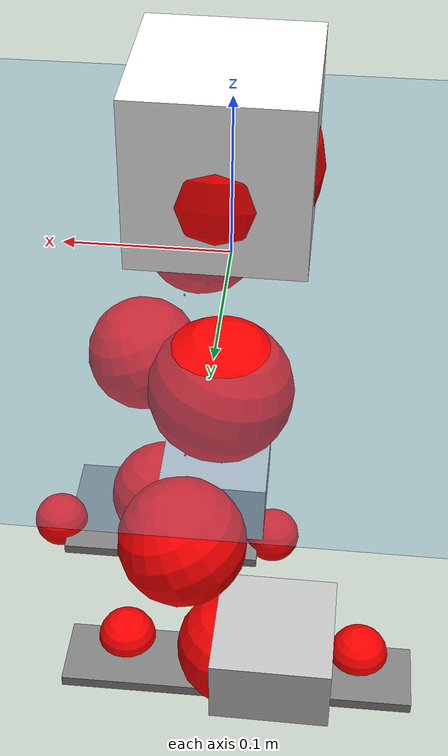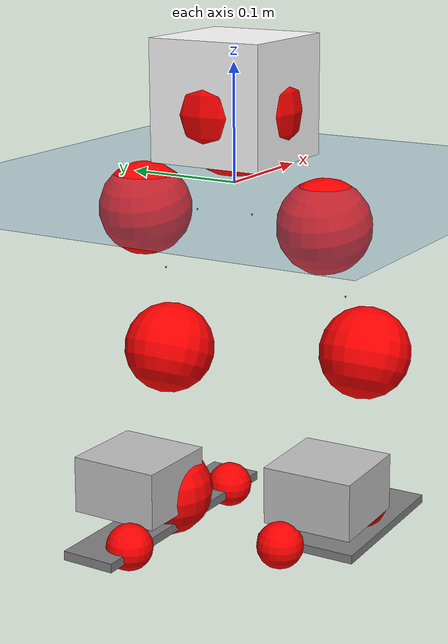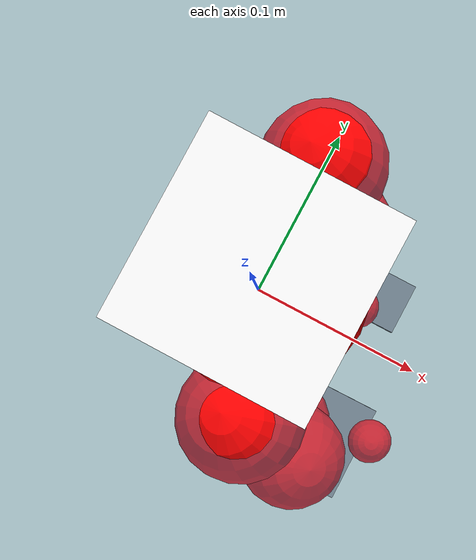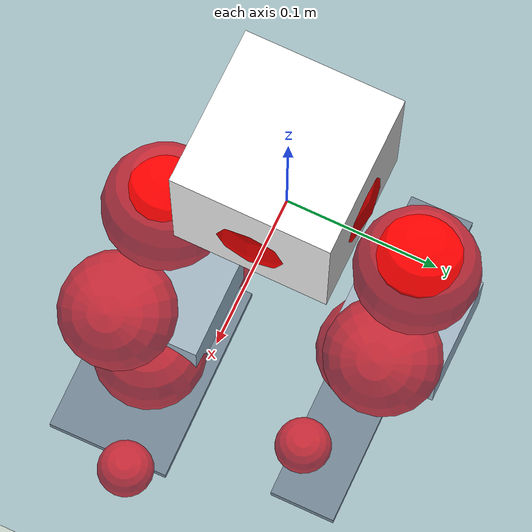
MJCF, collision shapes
<mujoco model="pi_12dof_release_v1">
  <compiler angle="radian" assetdir="assets" balanceinertia="true" inertiafromgeom="false"/>

  <option timestep="0.005" density="1.2" viscosity="2e-05"/>

  <size nkey="1"/>

  <visual>
    <quality shadowsize="8192"/>
    <map shadowclip="0.5"/>
  </visual>

  <default>
    <default class="/">
      <joint armature="0.01" damping="0.01" frictionloss="0.01"/>
      <geom contype="0" conaffinity="0" group="1" solref="-1000 -80"/>
      <site size="0.01 0.005 0.005" group="5"/>
      <general forcelimited="true" biastype="affine" gainprm="20" biasprm="0 -20 -0.5"/>
      <default class="foot">
        <geom size="0.0845 0.036 0.005" type="box" condim="6" group="4" priority="1" friction="0.9 0.2 0.2" solimp="0.015 1 0.005"/>
      </default>
      <default class="reward_collision_sphere">
        <geom group="5" rgba="1 0 0 1"/>
      </default>
    </default>
  </default>

  <asset>
    <texture type="skybox" colorspace="auto" name="//unnamed_texture_0" builtin="gradient" rgb1="0.95 0.95 0.95" rgb2="0.95 0.95 0.95" width="100" height="600"/>
    <texture type="2d" colorspace="auto" name="texplane" builtin="checker" rgb1="0.345 0.575 0.748" rgb2="0.345 0.575 0.748" markrgb="1 1 1" width="512" height="512"/>
    <material name="MatPlane" class="/" texture="texplane" texuniform="true" texrepeat="2 2" specular="0.9"/>
    <mesh name="baselink_1" class="/" file="baselink_1.STL"/>
    <mesh name="r_hip_pitch_link" class="/" file="r_hip_pitch_link.STL"/>
    <mesh name="r_hip_roll_link" class="/" file="r_hip_roll_link.STL"/>
    <mesh name="r_thigh_link" class="/" file="r_thigh_link.STL"/>
    <mesh name="r_calf_link" class="/" file="r_calf_link.STL"/>
    <mesh name="r_ankle_pitch_link" class="/" file="r_ankle_pitch_link.STL"/>
    <mesh name="r_ankle_roll_link" class="/" file="r_ankle_roll_link.STL"/>
    <mesh name="l_hip_pitch_link" class="/" file="l_hip_pitch_link.STL"/>
    <mesh name="l_hip_roll_link" class="/" file="l_hip_roll_link.STL"/>
    <mesh name="l_thigh_link" class="/" file="l_thigh_link.STL"/>
    <mesh name="l_calf_link" class="/" file="l_calf_link.STL"/>
    <mesh name="l_ankle_pitch_link" class="/" file="l_ankle_pitch_link.STL"/>
    <mesh name="l_ankle_roll_link" class="/" file="l_ankle_roll_link.STL"/>
  </asset>

  <worldbody>
    <geom name="floor" class="/" size="100 100 0.125" type="plane" group="0" material="MatPlane"/>
    <light name="toplight_shadow" class="/" pos="0 0 5" dir="0.0990148 0.0990148 -0.990148" type="directional" ambient="0.04 0.04 0.04" diffuse="0.55 0.55 0.55" specular="0.12 0.12 0.12"/>
    <light name="toplight_fill" class="/" pos="0 0 5" dir="0.0990148 0.0990148 -0.990148" type="directional" castshadow="false" ambient="0.04 0.04 0.04" diffuse="0.3 0.3 0.3" specular="0.08 0.08 0.08"/>
    <body name="trunk" pos="0.00435292 0.00107836 -0.00565736" quat="0.999994 0.000169322 -0.00209968 -0.00274843">
      <inertial pos="0.0184759 0.0123157 0.0450458" quat="0.704331 -0.00230734 0.0168269 0.709668" mass="1.84072" diaginertia="0.0264689 0.00460197 0.00304549"/>
      <joint name="//unnamed_joint_0" type="free"/>
      <geom name="//unnamed_geom_1" class="/" type="mesh" density="0" rgba="1 1 1 1" mesh="baselink_1"/>
      <geom name="//unnamed_geom_2" class="/" size="0.0508057 0.0508057 0.0508057" pos="0 0 0.0760119" type="box" rgba="1 1 1 1"/>
      <geom name="//unnamed_geom_3" class="reward_collision_sphere" size="0.0558862" pos="0 0 0.0665104"/>
      <site name="imu" class="/" pos="-0.0678098 -0.00288297 0.0675295" size="0.0101611"/>
      <camera name="track" class="/" pos="0 -1.75463 0" quat="0.707107 0.707107 0 0" mode="trackcom"/>
      <camera name="ego_camera" class="/" pos="0.0915656 0 0.171027" quat="-0.5 -0.5 0.5 0.5"/>
      <body name="r_hip_pitch_link" pos="0.0108181 -0.00896479 -0.0239806" quat="0.992077 -0.000494211 -0.125629 -0.000563491">
        <inertial pos="0.00248788 -0.037729 0.00125045" quat="-0.0172395 0.703226 -0.0310458 0.710079" mass="0.418646" diaginertia="0.000353326 6.95918e-05 7.78391e-05"/>
        <joint name="r_hip_pitch_joint" class="/" pos="0 0 0" axis="-0.000958597 -0.999498 0.031677" range="-1.7721 1.53284" armature="0.0164976" damping="0.0291736" frictionloss="0.0135134"/>
        <geom name="//unnamed_geom_4" class="/" type="mesh" density="0" rgba="0.75294 0.75294 0.75294 1" mesh="r_hip_pitch_link"/>
        <geom name="//unnamed_geom_5" class="/" size="0.000508057 0.000508057 0.000508057" type="box" rgba="0.75294 0.75294 0.75294 1"/>
        <body name="r_hip_roll_link" pos="0.00857442 -0.0641629 -0.00725601" quat="0.999979 -0.00147308 -0.00446567 0.00445761">
          <inertial pos="-0.00235528 -8.62557e-06 -0.0659295" quat="0.686629 -0.10368 -0.0414921 0.71838" mass="0.466817" diaginertia="0.00091105 0.00017442 9.48982e-05"/>
          <joint name="r_hip_roll_joint" class="/" pos="0 0 0" axis="-0.99866 -0.0447885 0.0259445" stiffness="0.00856201" range="-0.160454 0.478701" armature="0.0145476" damping="0.0701882" frictionloss="0.00305147"/>
          <geom name="//unnamed_geom_6" class="/" type="mesh" density="0" rgba="0.75294 0.75294 0.75294 1" mesh="r_hip_roll_link"/>
          <geom name="//unnamed_geom_7" class="/" size="0.000508057 0.000508057 0.000508057" type="box" rgba="0.75294 0.75294 0.75294 1"/>
          <geom name="//unnamed_geom_8" class="reward_collision_sphere" size="0.0406445"/>
          <body name="r_thigh_link" pos="-0.00213455 -0.0128567 -0.0638003" quat="0.999998 0.000219652 -0.00161248 -0.00109831">
            <inertial pos="0.00024973 -0.00245754 -0.0379115" quat="0.738033 0.674764 -0.000186025 -0.000390683" mass="0.124002" diaginertia="0.000403787 5.0027e-05 4.44757e-05"/>
            <joint name="r_thigh_joint" class="/" pos="0 0 0" axis="-0.0126681 0.00684166 -0.999896" range="-0.0976787 0.64874" armature="0.00247945" damping="0.0278966" frictionloss="0.00629906"/>
            <geom name="//unnamed_geom_9" class="/" type="mesh" density="0" rgba="0.75294 0.75294 0.75294 1" mesh="r_thigh_link"/>
            <geom name="//unnamed_geom_10" class="/" size="0.000508057 0.000508057 0.000508057" type="box" rgba="0.75294 0.75294 0.75294 1"/>
            <body name="r_calf_link" pos="0.0138846 -0.0042109 -0.0630479" quat="0.947542 -4.90879e-05 0.319631 -5.27097e-05">
              <inertial pos="0.00879198 0.0147535 -0.0568142" quat="0.996877 -0.0470339 0.0167345 0.061185" mass="0.835613" diaginertia="0.0105053 0.00145982 0.000147723"/>
              <joint name="r_calf_joint" class="/" pos="0 0 0" axis="0.0266704 -0.998809 0.0408541" range="-1.66473 0.51812" armature="0.0142858" damping="0.0284864" frictionloss="0.00951718"/>
              <geom name="//unnamed_geom_11" class="/" type="mesh" density="0" rgba="0.75294 0.75294 0.75294 1" mesh="r_calf_link"/>
              <geom name="//unnamed_geom_12" class="/" size="0.000508057 0.000508057 0.000508057" type="box" rgba="0.75294 0.75294 0.75294 1"/>
              <geom name="//unnamed_geom_13" class="reward_collision_sphere" size="0.0406445"/>
              <body name="r_ankle_pitch_link" pos="-0.00796507 0.00799527 -0.121172" quat="0.980099 0.00130746 -0.198423 0.00579005">
                <inertial pos="-0.00794531 0.00809899 0.00835242" quat="0.0366911 0.716933 -0.0234291 0.695782" mass="0.165369" diaginertia="0.000967743 0.000137687 8.01124e-05"/>
                <joint name="r_ankle_pitch_joint" class="/" pos="0 0 0" axis="-0.0162204 -0.998816 0.0458675" stiffness="0.050105" range="-1.55035 0.310498" armature="0.00587805" damping="0.0645435" frictionloss="0.0109907"/>
                <geom name="//unnamed_geom_14" class="/" type="mesh" density="0" rgba="0.75294 0.75294 0.75294 1" mesh="r_ankle_pitch_link"/>
                <geom name="//unnamed_geom_15" class="/" size="0.0396284 0.0406445 0.0254028" type="box" rgba="0.75294 0.75294 0.75294 1"/>
                <body name="r_ankle_roll_link" pos="0.100481 0.00398489 -0.00244031" quat="0.999991 0.00103805 0.00386419 0.00126032">
                  <inertial pos="-0.0182049 0.00055288 -0.0144352" quat="0.594252 0.464321 0.416744 0.507538" mass="0.41841" diaginertia="0.0024293 0.00050225 0.000191087"/>
                  <joint name="r_ankle_roll_joint" class="/" pos="0 0 0" axis="-0.999188 -0.00645495 -0.0397617" stiffness="0.00430385" range="-0.338308 0.160621" armature="0.00309514" damping="0.00371456" frictionloss="0.00790046"/>
                  <geom name="//unnamed_geom_16" class="/" type="mesh" density="0" rgba="0.75294 0.75294 0.75294 1" mesh="r_ankle_roll_link"/>
                  <geom name="//unnamed_geom_17" class="/" type="mesh" rgba="0.75294 0.75294 0.75294 1" mesh="r_ankle_roll_link"/>
                  <geom name="right_foot" class="foot" size="0.0735186 0.0451498 0.00377434" pos="-0.0622646 0 -0.0418065"/>
                  <geom name="//unnamed_geom_19" class="reward_collision_sphere" size="0.0406445" pos="-0.0610437 0 -0.019003"/>
                  <geom name="//unnamed_geom_20" class="reward_collision_sphere" size="0.0203223" pos="0.0183131 0.0175463 -0.038006"/>
                  <geom name="//unnamed_geom_21" class="reward_collision_sphere" size="0.0203223" pos="-0.146505 0.0175463 -0.038006"/>
                  <site name="right_foot" class="foot" pos="-0.0622646 0 -0.0418065" size="0.0101611"/>
                </body>
              </body>
            </body>
          </body>
        </body>
      </body>
      <body name="l_hip_pitch_link" pos="-0.0127114 0.0304114 -0.0191424" quat="0.9922 0.000116613 -0.124656 -0.000173629">
        <inertial pos="-0.000782543 0.0379079 0.0140509" quat="-0.005421 0.711554 0.0741255 0.69869" mass="0.334704" diaginertia="0.000230649 4.72256e-05 7.08533e-05"/>
        <joint name="l_hip_pitch_joint" class="/" pos="0 0 0" axis="-0.00222589 0.999997 0.000654699" stiffness="0.0474692" range="-1.30652 1.73106" armature="0.0100245" damping="0" frictionloss="0.0150386"/>
        <geom name="//unnamed_geom_22" class="/" type="mesh" density="0" rgba="0.75294 0.75294 0.75294 1" mesh="l_hip_pitch_link"/>
        <geom name="//unnamed_geom_23" class="/" size="0.000508057 0.000508057 0.000508057" type="box" rgba="0.75294 0.75294 0.75294 1"/>
        <body name="l_hip_roll_link" pos="0.00336046 0.0564232 -0.00690108" quat="0.999995 0.00113108 0.00230015 0.00157526">
          <inertial pos="0.0129768 -0.00527204 -0.0434906" quat="0.70116 -0.0739457 -0.0779228 0.704865" mass="0.495502" diaginertia="0.00120736 0.000142075 0.000103647"/>
          <joint name="l_hip_roll_joint" class="/" pos="0 0 0" axis="-0.999802 0.0118439 0.015988" stiffness="0.00228334" range="-0.613025 0.187016" armature="0.0123006" damping="0" frictionloss="0.0144078"/>
          <geom name="//unnamed_geom_24" class="/" type="mesh" density="0" rgba="0.75294 0.75294 0.75294 1" mesh="l_hip_roll_link"/>
          <geom name="//unnamed_geom_25" class="/" size="0.000508057 0.000508057 0.000508057" type="box" rgba="0.75294 0.75294 0.75294 1"/>
          <geom name="//unnamed_geom_26" class="reward_collision_sphere" size="0.0406445"/>
          <body name="l_thigh_link" pos="0.00644299 -0.00606357 -0.0605784" quat="1 0.000113716 -0.000516418 0.000547151">
            <inertial pos="-0.00770365 -0.013643 -0.0398766" quat="0.666575 0.744136 0.00345755 -0.0439115" mass="0.0938888" diaginertia="0.000305603 3.34618e-05 3.37828e-05"/>
            <joint name="l_thigh_joint" class="/" pos="0 0 0" axis="0.000952779 -0.00899403 -0.999959" stiffness="0.0606222" range="-0.322795 0.474687" armature="0.00763986" damping="0.00372891" frictionloss="0.0103614"/>
            <geom name="//unnamed_geom_27" class="/" type="mesh" density="0" rgba="0.75294 0.75294 0.75294 1" mesh="l_thigh_link"/>
            <geom name="//unnamed_geom_28" class="/" size="0.000508057 0.000508057 0.000508057" type="box" rgba="0.75294 0.75294 0.75294 1"/>
            <body name="l_calf_link" pos="-0.0155181 -0.000807064 -0.0732427" quat="0.947601 -0.000195493 0.319457 0.000367409">
              <inertial pos="0.00901253 -0.00466786 -0.0520797" quat="0.997126 0.0140144 0.0425697 -0.0610868" mass="0.866459" diaginertia="0.0115164 0.00217506 0.000158669"/>
              <joint name="l_calf_joint" class="/" pos="0 0 0" axis="0.055229 0.998395 -0.0125411" range="-0.660003 1.53619" armature="0.00979222" damping="0.0558833" frictionloss="0.00713981"/>
              <geom name="//unnamed_geom_29" class="/" type="mesh" density="0" rgba="0.75294 0.75294 0.75294 1" mesh="l_calf_link"/>
              <geom name="//unnamed_geom_30" class="/" size="0.000508057 0.000508057 0.000508057" type="box" rgba="0.75294 0.75294 0.75294 1"/>
              <geom name="//unnamed_geom_31" class="reward_collision_sphere" size="0.0406445"/>
              <body name="l_ankle_pitch_link" pos="-0.0144032 -0.0056581 -0.12022" quat="0.980835 0.00170372 -0.194788 -0.00410156">
                <inertial pos="0.00546799 -0.00928023 -0.00405425" quat="0.00287663 0.708367 0.00274105 0.705833" mass="0.232995" diaginertia="0.00105463 0.000130592 0.000106241"/>
                <joint name="l_ankle_pitch_joint" class="/" pos="0 0 0" axis="0.000112215 0.999997 -0.00230716" stiffness="0.00394553" range="-0.346882 1.48957" armature="0.0144522" damping="0" frictionloss="0.00682349"/>
                <geom name="//unnamed_geom_32" class="/" type="mesh" density="0" rgba="0.75294 0.75294 0.75294 1" mesh="l_ankle_pitch_link"/>
                <geom name="//unnamed_geom_33" class="/" size="0.0396284 0.0406445 0.0254028" type="box" rgba="0.75294 0.75294 0.75294 1"/>
                <body name="l_ankle_roll_link" pos="0.0879572 -0.0113708 0.00281842" quat="0.999977 0.00410384 0.00033873 0.00538901">
                  <inertial pos="-0.0406367 0.00705765 -0.0184269" quat="0.524383 0.435782 0.421386 0.597955" mass="0.517181" diaginertia="0.00335214 0.000530225 0.000243013"/>
                  <joint name="l_ankle_roll_joint" class="/" pos="0 0 0" axis="-0.999999 -0.00169102 -0.000323995" stiffness="0.0669574" range="-0.395187 0.347701" armature="0.00385898" damping="0" frictionloss="0.00661472"/>
                  <geom name="//unnamed_geom_34" class="/" type="mesh" density="0" rgba="0.75294 0.75294 0.75294 1" mesh="l_ankle_roll_link"/>
                  <geom name="//unnamed_geom_35" class="/" type="mesh" rgba="0.75294 0.75294 0.75294 1" mesh="l_ankle_roll_link"/>
                  <geom name="left_foot" class="foot" size="0.120771 0.0241983 0.00402498" pos="-0.0622646 0 -0.0418065"/>
                  <geom name="//unnamed_geom_37" class="reward_collision_sphere" size="0.0406445" pos="-0.0610437 0 -0.019003"/>
                  <geom name="//unnamed_geom_38" class="reward_collision_sphere" size="0.0203223" pos="0.0183131 -0.0175463 -0.038006"/>
                  <geom name="//unnamed_geom_39" class="reward_collision_sphere" size="0.0203223" pos="-0.146505 -0.0175463 -0.038006"/>
                  <site name="left_foot" class="foot" pos="-0.0622646 0 -0.0418065" size="0.0101611"/>
                </body>
              </body>
            </body>
          </body>
        </body>
      </body>
    </body>
  </worldbody>

  <contact>
    <pair class="/" geom1="floor" geom2="right_foot" name="//unnamed_contact_1"/>
    <pair class="/" geom1="floor" geom2="left_foot" name="//unnamed_contact_0"/>
  </contact>

  <actuator>
    <general name="r_hip_pitch_joint" class="/" joint="r_hip_pitch_joint" forcerange="-12.277 12.277" gainprm="28.3127" biasprm="0 -28.3127 -0.536053"/>
    <general name="r_hip_roll_joint" class="/" joint="r_hip_roll_joint" forcerange="-22.2075 22.2075" gainprm="28.3127" biasprm="0 -28.3127 -0.536053"/>
    <general name="r_thigh_joint" class="/" joint="r_thigh_joint" forcerange="-20.437 20.437" gainprm="28.3127" biasprm="0 -28.3127 -0.536053"/>
    <general name="r_calf_joint" class="/" joint="r_calf_joint" forcerange="-10.6792 10.6792" gainprm="28.3127" biasprm="0 -28.3127 -0.536053"/>
    <general name="r_ankle_pitch_joint" class="/" joint="r_ankle_pitch_joint" forcerange="-18.9016 18.9016" gainprm="28.3127" biasprm="0 -28.3127 -0.536053"/>
    <general name="r_ankle_roll_joint" class="/" joint="r_ankle_roll_joint" forcerange="-22.7792 22.7792" gainprm="28.3127" biasprm="0 -28.3127 -0.536053"/>
    <general name="l_hip_pitch_joint" class="/" joint="l_hip_pitch_joint" forcerange="-30.1708 30.1708" gainprm="28.3127" biasprm="0 -28.3127 -0.536053"/>
    <general name="l_hip_roll_joint" class="/" joint="l_hip_roll_joint" forcerange="-32.6389 32.6389" gainprm="28.3127" biasprm="0 -28.3127 -0.536053"/>
    <general name="l_thigh_joint" class="/" joint="l_thigh_joint" forcerange="-25.7434 25.7434" gainprm="28.3127" biasprm="0 -28.3127 -0.536053"/>
    <general name="l_calf_joint" class="/" joint="l_calf_joint" forcerange="-21.4128 21.4128" gainprm="28.3127" biasprm="0 -28.3127 -0.536053"/>
    <general name="l_ankle_pitch_joint" class="/" joint="l_ankle_pitch_joint" forcerange="-13.2793 13.2793" gainprm="28.3127" biasprm="0 -28.3127 -0.536053"/>
    <general name="l_ankle_roll_joint" class="/" joint="l_ankle_roll_joint" forcerange="-24.0441 24.0441" gainprm="28.3127" biasprm="0 -28.3127 -0.536053"/>
  </actuator>

  <sensor>
    <gyro site="imu" name="imu_angular_velocity"/>
    <velocimeter site="imu" name="imu_linear_velocity"/>
    <framelinvel objtype="site" objname="left_foot" name="left_foot_global_linear_velocity"/>
    <framelinvel objtype="site" objname="right_foot" name="right_foot_global_linear_velocity"/>
  </sensor>

  <keyframe>
    <key name="home" qpos="0 0 0.291 1 0 0 0 0.4 0 0 -0.8 0.4 0 -0.4 0 0 0.8 -0.4 0"/>
  </keyframe>
</mujoco>
